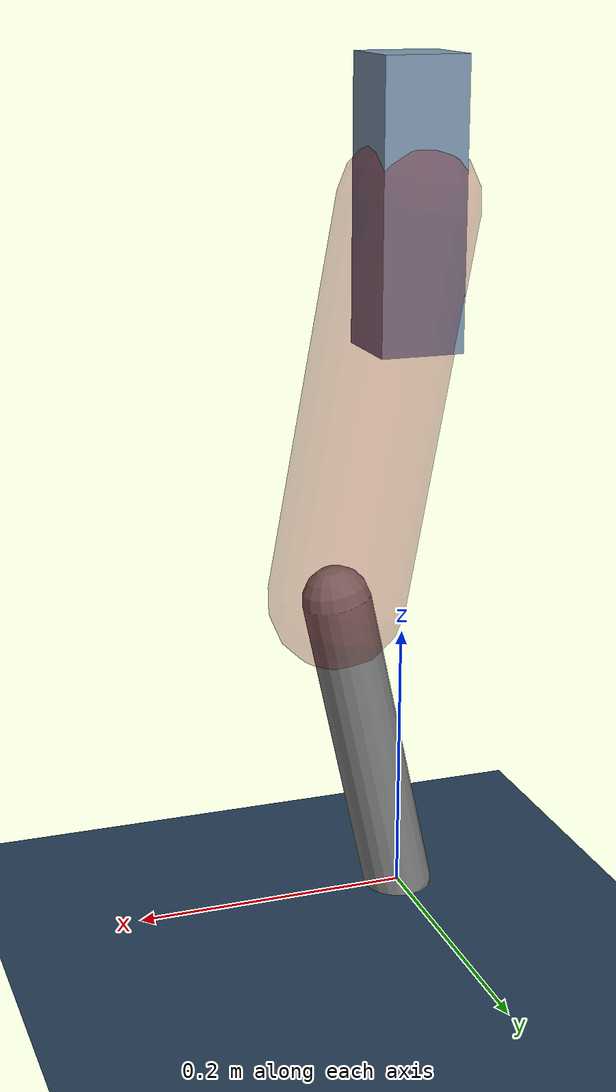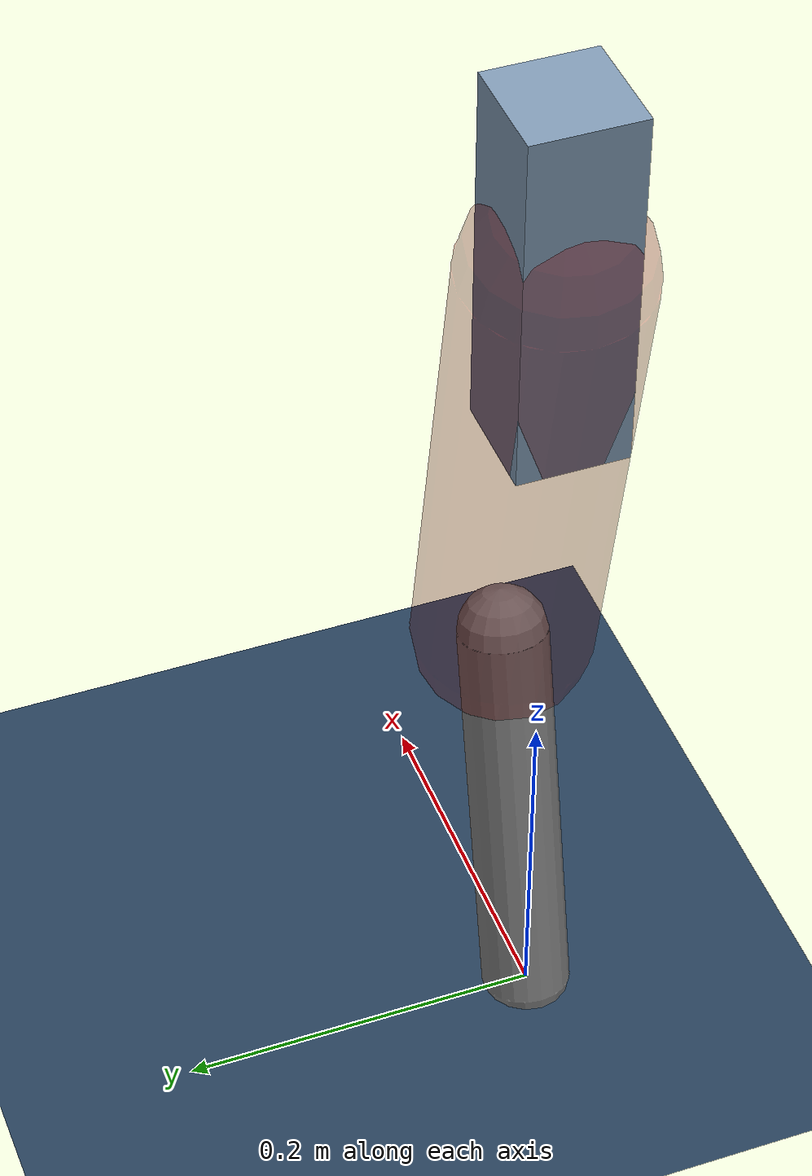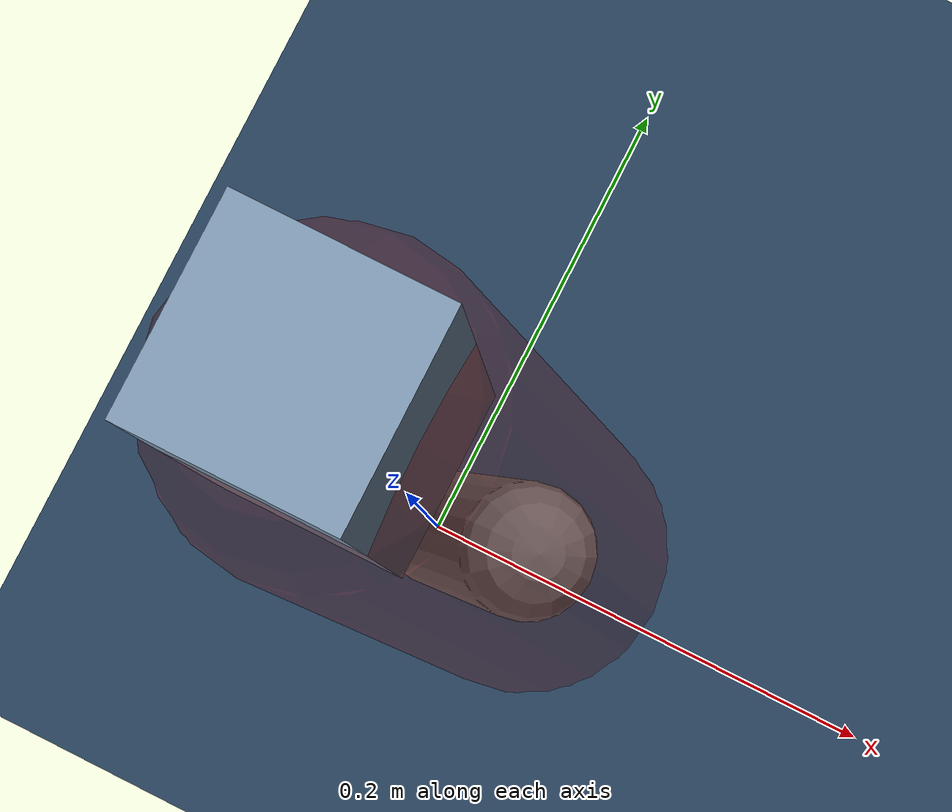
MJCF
<mujoco model="Hopper2D">
	<compiler inertiafromgeom="true" angle="radian" />
	<option timestep="0.001" integrator="implicit" cone="elliptic" solver="Newton" tolerance="1e-10" />

	<default>
		<geom contype="1" conaffinity="1" condim="3" friction="2 0.005 0.0001" solref="0.005 1" />
		<joint limited="true" damping="0.1" />
	</default>

	<asset>
		<texture name="skybox" type="skybox" builtin="gradient" rgb1=".4 .6 .8" rgb2="0 0 0" width="800" height="800" />
		<texture name="grid" type="2d" builtin="checker" rgb1=".1 .2 .3" rgb2=".2 .3 .4" width="300" height="300" mark="edge" markrgb=".2 .3 .4" />
		<material name="ground" texture="grid" texrepeat="1 1" texuniform="true" reflectance="0.1" />
		<material name="leg" rgba="0.5 0.6 0.7 1" />
	</asset>

	<worldbody>

		<geom name="floor" type="plane" size="5 5 0.25" material="ground" />

		<light directional="false" diffuse="0.8 0.8 0.8" specular="0.3 0.3 0.3" pos="0 0 2" dir="0 0 -1" />
		<light mode="targetbodycom" target="base" directional="false" diffuse="0.8 0.8 0.8" specular="0.3 0.3 0.3" pos="0 0 2" dir="0 0 -1" />

		<camera name="fixed" pos="0 -2 1" xyaxes="1 0 0 0 0 1" />
		<camera name="tracking" mode="trackcom" pos="0 -3 1" />

		<body name="root" pos="0 0 0.5105011707322229">
			<joint name="slide_x" type="slide" axis="1 0 0" range="-100 100" />
			<joint name="slide_z" type="slide" axis="0 0 1" range="0 10" />

			<body name="base" pos="0 0 0">
				<geom name="torso" type="box" size="0.03 0.03 0.1" mass="3.933" material="leg" />

				<body name="link1" pos="0 0 0" euler="0 1.392116359793203 0">
					<joint type="hinge" axis="0 -1 0" pos="0 0 0" name="hinge1" limited="true" range="-3.14 3.14" stiffness="0" damping="0.1" />
					<geom name="thigh" type="capsule" fromto="0 0 0 0.2843735330810574 0 0" size="0.05" rgba="0.5 0 0 0.3" mass="0.9467711860107493" />

					<body name="link2" pos="0.2843735330810574 0 0" euler="0 0.39439390441868294 0">
						<joint type="hinge" axis="0 -1 0" pos="0 0 0" name="hinge2" limited="true" range="-3.14 3.14" stiffness="0" damping="0.1" />
						<geom name="shank" type="capsule" fromto="0 0 0 0.2361276376511655 0 0" size="0.025" mass="0.4311021101209324" />

					</body>
				</body>
			</body>
		</body>
	</worldbody>

	<actuator>
		<motor name="torque1" joint="hinge1" ctrlrange="-162.41540293677522 162.41540293677522" ctrllimited="true" gear="1" />
		<motor name="torque2" joint="hinge2" ctrlrange="-154.32212556802568 154.32212556802568" ctrllimited="true" gear="1" />
	</actuator>
</mujoco>
